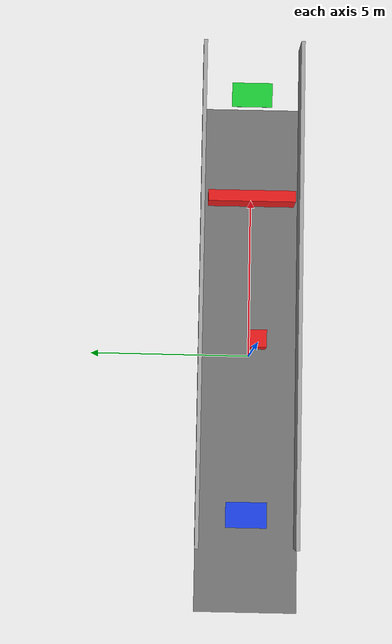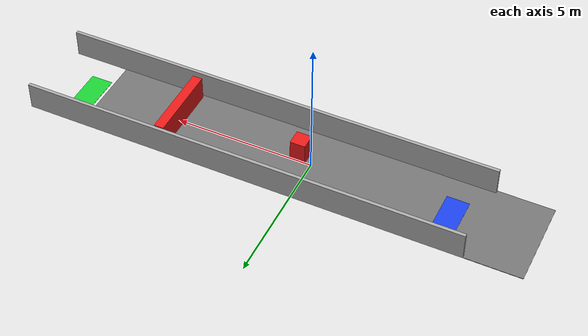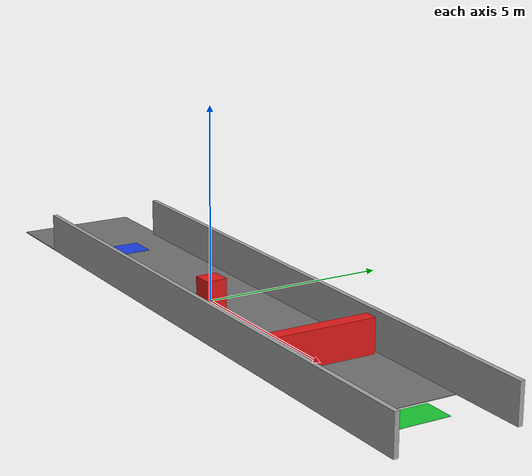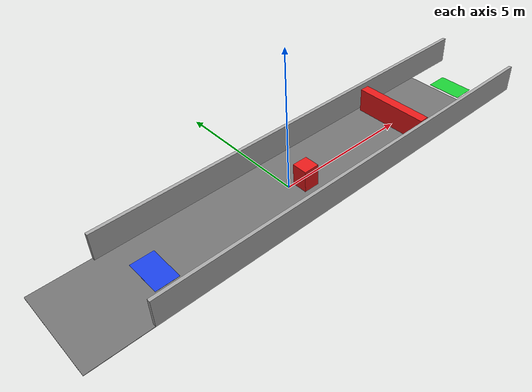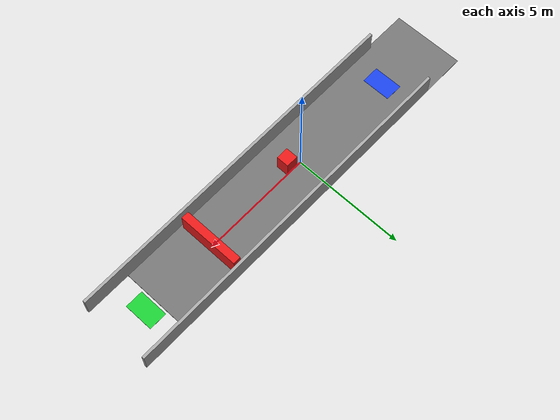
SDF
<?xml version="1.0"?>
<sdf version="1.8">
  <world name="shipyard_corridor_blocked">

    <physics name="1ms" type="ignored">
      <max_step_size>0.001</max_step_size>
      <real_time_factor>1.0</real_time_factor>
    </physics>

    <plugin filename="ignition-gazebo-physics-system" name="ignition::gazebo::systems::Physics"/>
    <plugin filename="ignition-gazebo-user-commands-system" name="ignition::gazebo::systems::UserCommands"/>
    <plugin filename="ignition-gazebo-scene-broadcaster-system" name="ignition::gazebo::systems::SceneBroadcaster"/>
    <plugin filename="libignition-gazebo-sensors-system.so" name="ignition::gazebo::systems::Sensors"><render_engine>ogre2</render_engine></plugin>
    <plugin filename="libignition-gazebo-imu-system.so" name="ignition::gazebo::systems::Imu"/>

    <light type="directional" name="sun">
      <cast_shadows>true</cast_shadows>
      <pose>0 0 10 0 0 0</pose>
      <diffuse>0.8 0.8 0.8 1</diffuse>
      <specular>0.2 0.2 0.2 1</specular>
      <direction>-0.5 0.1 -0.9</direction>
    </light>

    <model name="corridor_floor"><static>true</static><link name="link"><collision name="collision"><geometry><box><size>16.0 3.2 0.02</size></box></geometry></collision><visual name="visual"><geometry><box><size>16.0 3.2 0.02</size></box></geometry><material><ambient>0.45 0.45 0.45 1</ambient><diffuse>0.45 0.45 0.45 1</diffuse></material></visual></link></model>
    <model name="left_corridor_wall"><static>true</static><pose>2.0 1.55 0.5 0 0 0</pose><link name="link"><collision name="collision"><geometry><box><size>16.0 0.12 1.0</size></box></geometry></collision><visual name="visual"><geometry><box><size>16.0 0.12 1.0</size></box></geometry><material><ambient>0.65 0.65 0.65 1</ambient><diffuse>0.65 0.65 0.65 1</diffuse></material></visual></link></model>
    <model name="right_corridor_wall"><static>true</static><pose>2.0 -1.55 0.5 0 0 0</pose><link name="link"><collision name="collision"><geometry><box><size>16.0 0.12 1.0</size></box></geometry></collision><visual name="visual"><geometry><box><size>16.0 0.12 1.0</size></box></geometry><material><ambient>0.65 0.65 0.65 1</ambient><diffuse>0.65 0.65 0.65 1</diffuse></material></visual></link></model>

    <model name="start_zone_marker"><static>true</static><pose>-5.0 0 0.012 0 0 0</pose><link name="link"><visual name="visual"><geometry><box><size>0.8 1.3 0.01</size></box></geometry><material><ambient>0.1 0.25 0.9 1</ambient><diffuse>0.1 0.25 0.9 1</diffuse></material></visual></link></model>
    <model name="blocked_endpoint_marker"><static>true</static><pose>8.5 0 0.012 0 0 0</pose><link name="link"><visual name="visual"><geometry><box><size>0.8 1.3 0.01</size></box></geometry><material><ambient>0.1 0.8 0.2 1</ambient><diffuse>0.1 0.8 0.2 1</diffuse></material></visual></link></model>

    <model name="avoidable_obstruction_red_block"><static>true</static><pose>0.5 -0.25 0.4 0 0 0</pose><link name="link"><collision name="collision"><geometry><box><size>0.55 0.55 0.8</size></box></geometry></collision><visual name="visual"><geometry><box><size>0.55 0.55 0.8</size></box></geometry><material><ambient>0.9 0.1 0.1 1</ambient><diffuse>0.9 0.1 0.1 1</diffuse></material></visual></link></model>

    <!-- Full blocked-route hazard across the corridor for safe-stop testing -->
    <model name="blocked_route_barrier"><static>true</static><pose>5.0 0 0.45 0 0 0</pose><link name="link"><collision name="collision"><geometry><box><size>0.35 2.75 0.9</size></box></geometry></collision><visual name="visual"><geometry><box><size>0.35 2.75 0.9</size></box></geometry><material><ambient>0.9 0.1 0.1 1</ambient><diffuse>0.9 0.1 0.1 1</diffuse></material></visual></link></model>

  </world>
</sdf>
